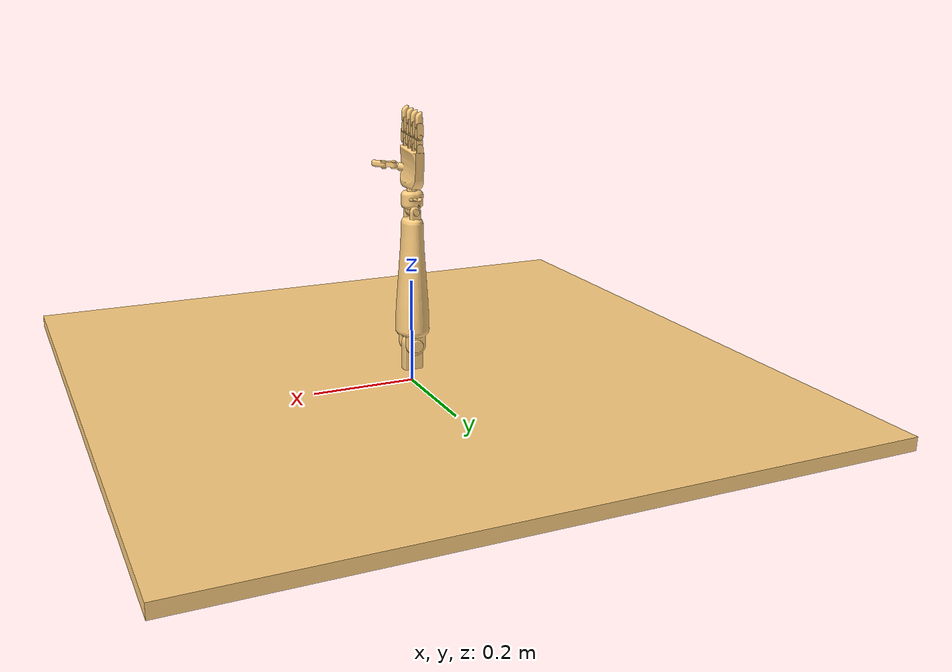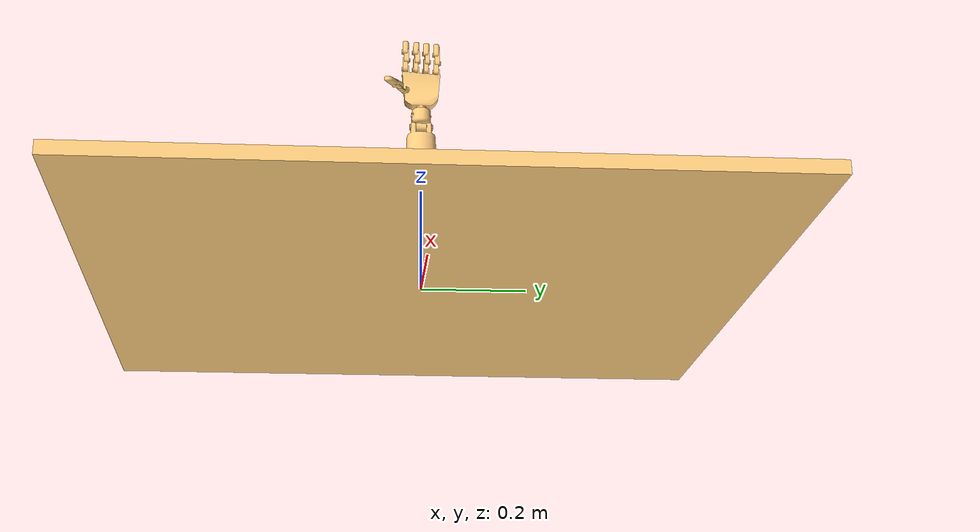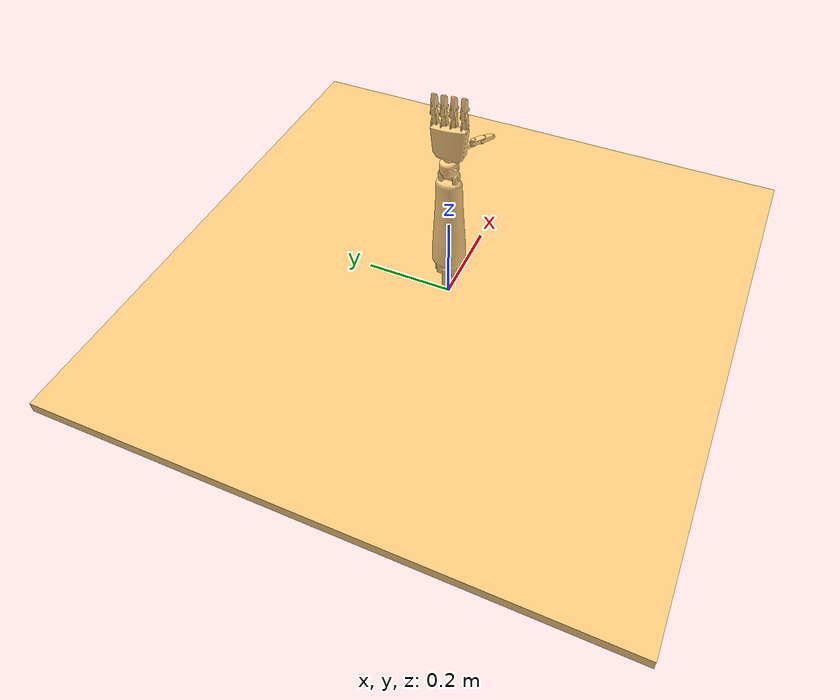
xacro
<?xml version="1.0"?>
<robot
  name="human_gripper" xmlns:xacro="http://ros.org/wiki/xacro">

  <link name="dummy_link"></link>

  <link
    name="base_link">
    <inertial>
      <origin
        xyz="-0.00634030455138496 0.0127750182488855 -0.00253612182055409"
        rpy="0 0 0" />
      <mass
        value="779.575829353543" />
      <inertia
        ixx="104.663902606885"
        ixy="2.15382035157885E-19"
        ixz="-3.1701589064862E-20"
        iyy="209.243253187742"
        iyz="4.02390555833248E-21"
        izz="104.663885218665" />
    </inertial>
    <visual>
      <origin
        xyz="0 0 0"
        rpy="0 0 0" />
      <geometry>
        <mesh
          filename="package://human_gripper/meshes/base_link.STL" />
      </geometry>
      <material
        name="">
        <color
          rgba="1 0.807843137254902 0.498039215686275 1" />
      </material>
    </visual>
    <collision>
      <origin
        xyz="0 0 0"
        rpy="0 0 0" />
      <geometry>
        <mesh
          filename="package://human_gripper/meshes/base_link.STL" />
      </geometry>
    </collision>
  </link>

  <joint name="dummy_joint" type="fixed">
    <origin rpy="0 0 0" xyz="0 0 0" />
    <parent link="dummy_link"/>
    <child link="base_link"/>
  </joint>

  <link
    name="forearm_link">
    <inertial>
      <origin
        xyz="-4.77540505455796E-07 -0.113350147515814 1.68465653167629E-07"
        rpy="0 0 0" />
      <mass
        value="12.0783072555266" />
      <inertia
        ixx="0.0563231524384721"
        ixy="9.60478297477321E-08"
        ixz="-1.35452302599274E-05"
        iyy="0.00565540642784919"
        iyz="-2.22869048134897E-08"
        izz="0.0577408713954579" />
    </inertial>
    <visual>
      <origin
        xyz="0 0 0"
        rpy="0 0 0" />
      <geometry>
        <mesh
          filename="package://human_gripper/meshes/forearm_link.STL" />
      </geometry>
      <material
        name="">
        <color
          rgba="1 0.807843137254902 0.498039215686275 1" />
      </material>
    </visual>
    <collision>
      <origin
        xyz="0 0 0"
        rpy="0 0 0" />
      <geometry>
        <mesh
          filename="package://human_gripper/meshes/forearm_link.STL" />
      </geometry>
    </collision>
  </link>
  <joint
    name="forearm_joint"
    type="revolute">
    <origin
      xyz="0 0 0.0762"
      rpy="-1.5708 0 -1.5708" />
    <parent
      link="base_link" />
    <child
      link="forearm_link" />
    <axis
      xyz="1 0 0" />
    <limit
      lower="-1.5708"
      upper="1.5708"
      effort="0"
      velocity="0" />
  </joint>
  <link
    name="wrist_link">
    <inertial>
      <origin
        xyz="-3.54827341787243E-09 0.015834457280835 9.20907958153161E-09"
        rpy="0 0 0" />
      <mass
        value="0.655755126741823" />
      <inertia
        ixx="0.000171746019698482"
        ixy="4.60377062089149E-12"
        ixz="9.03072156882194E-11"
        iyy="0.000132861214111197"
        iyz="-7.82107207987216E-11"
        izz="0.000161699361151699" />
    </inertial>
    <visual>
      <origin
        xyz="0 0 0"
        rpy="0 0 0" />
      <geometry>
        <mesh
          filename="package://human_gripper/meshes/wrist_link.STL" />
      </geometry>
      <material
        name="">
        <color
          rgba="1 0.807843137254902 0.498039215686275 1" />
      </material>
    </visual>
    <collision>
      <origin
        xyz="0 0 0"
        rpy="0 0 0" />
      <geometry>
        <mesh
          filename="package://human_gripper/meshes/wrist_link.STL" />
      </geometry>
    </collision>
  </link>
  <joint
    name="wrist_joint"
    type="revolute">
    <origin
      xyz="0 -0.26035 0"
      rpy="3.1416 0 0" />
    <parent
      link="forearm_link" />
    <child
      link="wrist_link" />
    <axis
      xyz="1 0 0" />
    <limit
      lower="-1.5708"
      upper="1.5708"
      effort="0"
      velocity="0" />
  </joint>
  <link
    name="palm_link">
    <inertial>
      <origin
        xyz="-0.00133454641740369 0.0604857930043962 -0.000847620366275223"
        rpy="0 0 0" />
      <mass
        value="2.21181125890624" />
      <inertia
        ixx="0.00149018247410878"
        ixy="1.91127863922923E-05"
        ixz="1.41042568019278E-05"
        iyy="0.000910318631613756"
        iyz="1.85684897250999E-05"
        izz="0.0022313457033219" />
    </inertial>
    <visual>
      <origin
        xyz="0 0 0"
        rpy="0 0 0" />
      <geometry>
        <mesh
          filename="package://human_gripper/meshes/palm_link.STL" />
      </geometry>
      <material
        name="">
        <color
          rgba="1 0.807843137254902 0.498039215686275 1" />
      </material>
    </visual>
    <collision>
      <origin
        xyz="0 0 0"
        rpy="0 0 0" />
      <geometry>
        <mesh
          filename="package://human_gripper/meshes/palm_link.STL" />
      </geometry>
    </collision>
  </link>
  <joint
    name="palm_joint"
    type="revolute">
    <origin
      xyz="0 0.01778 0"
      rpy="3.1416 0 3.1416" />
    <parent
      link="wrist_link" />
    <child
      link="palm_link" />
    <axis
      xyz="0 1 0" />
    <limit
      lower="0"
      upper="1.5708"
      effort="0"
      velocity="0" />
  </joint>
  <link
    name="thumb_link1">
    <inertial>
      <origin
        xyz="0.00901683401057651 0.00903716742958728 6.93889390390723E-18"
        rpy="0 0 0" />
      <mass
        value="0.0492845244427773" />
      <inertia
        ixx="3.81144161579786E-06"
        ixy="1.63250192709397E-07"
        ixz="-2.50222135297291E-23"
        iyy="1.1797655035283E-06"
        iyz="-1.27054942088145E-21"
        izz="3.7872566212501E-06" />
    </inertial>
    <visual>
      <origin
        xyz="0 0 0"
        rpy="0 0 0" />
      <geometry>
        <mesh
          filename="package://human_gripper/meshes/thumb_link1.STL" />
      </geometry>
      <material
        name="">
        <color
          rgba="1 0.807843137254902 0.498039215686275 1" />
      </material>
    </visual>
    <collision>
      <origin
        xyz="0 0 0"
        rpy="0 0 0" />
      <geometry>
        <mesh
          filename="package://human_gripper/meshes/thumb_link1.STL" />
      </geometry>
    </collision>
  </link>
  <joint
    name="thumb_joint1"
    type="revolute">
    <origin
      xyz="-0.043397 0.054047 0.01932"
      rpy="0.87388 0.045212 1.5421" />
    <parent
      link="palm_link" />
    <child
      link="thumb_link1" />
    <axis
      xyz="1 0 0" />
    <limit
      lower="0"
      upper="1.5708"
      effort="0"
      velocity="0" />
  </joint>
  <link
    name="thumb_link2">
    <inertial>
      <origin
        xyz="0.00776491096542914 0.0196806505323827 -0.000219933657724693"
        rpy="0 0 0" />
      <mass
        value="0.0584744149508582" />
      <inertia
        ixx="4.13565778419691E-06"
        ixy="-1.47109498906188E-07"
        ixz="3.97502678654692E-09"
        iyy="1.20799914295799E-06"
        iyz="1.66062681779658E-07"
        izz="3.95233199235737E-06" />
    </inertial>
    <visual>
      <origin
        xyz="0 0 0"
        rpy="0 0 0" />
      <geometry>
        <mesh
          filename="package://human_gripper/meshes/thumb_link2.STL" />
      </geometry>
      <material
        name="">
        <color
          rgba="1 0.807843137254902 0.498039215686275 1" />
      </material>
    </visual>
    <collision>
      <origin
        xyz="0 0 0"
        rpy="0 0 0" />
      <geometry>
        <mesh
          filename="package://human_gripper/meshes/thumb_link2.STL" />
      </geometry>
    </collision>
  </link>
  <joint
    name="thumb_joint2"
    type="revolute">
    <origin
      xyz="0 0.01 0"
      rpy="0 0 0" />
    <parent
      link="thumb_link1" />
    <child
      link="thumb_link2" />
    <axis
      xyz="1 0 0" />
    <limit
      lower="0"
      upper="1.5708"
      effort="0"
      velocity="0" />
  </joint>
  <link
    name="index_link1">
    <inertial>
      <origin
        xyz="0.00933728052580867 -0.00903716742958732 -2.96028299798E-18"
        rpy="0 0 0" />
      <mass
        value="0.0492845244427773" />
      <inertia
        ixx="3.81144161579786E-06"
        ixy="-1.63250192709408E-07"
        ixz="1.11280468297742E-22"
        iyy="1.1797655035283E-06"
        iyz="7.91973255189714E-22"
        izz="3.78725662125011E-06" />
    </inertial>
    <visual>
      <origin
        xyz="0 0 0"
        rpy="0 0 0" />
      <geometry>
        <mesh
          filename="package://human_gripper/meshes/index_link1.STL" />
      </geometry>
      <material
        name="">
        <color
          rgba="1 0.807843137254902 0.498039215686275 1" />
      </material>
    </visual>
    <collision>
      <origin
        xyz="0 0 0"
        rpy="0 0 0" />
      <geometry>
        <mesh
          filename="package://human_gripper/meshes/index_link1.STL" />
      </geometry>
    </collision>
  </link>
  <joint
    name="index_joint1"
    type="revolute">
    <origin
      xyz="-0.022786 0.10973 0"
      rpy="0 0 -3.1416" />
    <parent
      link="palm_link" />
    <child
      link="index_link1" />
    <axis
      xyz="1 0 0" />
    <limit
      lower="-1.5708"
      upper="0"
      effort="0"
      velocity="0" />
  </joint>
  <link
    name="index_link2">
    <inertial>
      <origin
        xyz="-0.00488671947419137 0.00903716742958732 6.95315974962666E-18"
        rpy="0 0 0" />
      <mass
        value="0.0492845244427774" />
      <inertia
        ixx="3.81144161579786E-06"
        ixy="1.63250192709402E-07"
        ixz="7.50127380606275E-23"
        iyy="1.1797655035283E-06"
        iyz="-1.26694764744726E-21"
        izz="3.7872566212501E-06" />
    </inertial>
    <visual>
      <origin
        xyz="0 0 0"
        rpy="0 0 0" />
      <geometry>
        <mesh
          filename="package://human_gripper/meshes/index_link2.STL" />
      </geometry>
      <material
        name="">
        <color
          rgba="1 0.807843137254902 0.498039215686275 1" />
      </material>
    </visual>
    <collision>
      <origin
        xyz="0 0 0"
        rpy="0 0 0" />
      <geometry>
        <mesh
          filename="package://human_gripper/meshes/index_link2.STL" />
      </geometry>
    </collision>
  </link>
  <joint
    name="index_joint2"
    type="revolute">
    <origin
      xyz="0.00254 -0.01905 0"
      rpy="0 0 -3.1416" />
    <parent
      link="index_link1" />
    <child
      link="index_link2" />
    <axis
      xyz="1 0 0" />
    <limit
      lower="0"
      upper="1.5708"
      effort="0"
      velocity="0" />
  </joint>
  <link
    name="index_link3">
    <inertial>
      <origin
        xyz="-0.00613864169175579 0.0106306443706335 -0.000219930065790364"
        rpy="0 0 0" />
      <mass
        value="0.0584743357750474" />
      <inertia
        ixx="4.13565127579707E-06"
        ixy="-1.471099722789E-07"
        ixz="3.97564171396168E-09"
        iyy="1.20799696989037E-06"
        iyz="1.66066676079325E-07"
        izz="3.95232466111938E-06" />
    </inertial>
    <visual>
      <origin
        xyz="0 0 0"
        rpy="0 0 0" />
      <geometry>
        <mesh
          filename="package://human_gripper/meshes/index_link3.STL" />
      </geometry>
      <material
        name="">
        <color
          rgba="1 0.807843137254902 0.498039215686275 1" />
      </material>
    </visual>
    <collision>
      <origin
        xyz="0 0 0"
        rpy="0 0 0" />
      <geometry>
        <mesh
          filename="package://human_gripper/meshes/index_link3.STL" />
      </geometry>
    </collision>
  </link>
  <joint
    name="index_joint3"
    type="revolute">
    <origin
      xyz="0 0.01905 0"
      rpy="0 0 0" />
    <parent
      link="index_link2" />
    <child
      link="index_link3" />
    <axis
      xyz="1 0 0" />
    <limit
      lower="0"
      upper="1.5708"
      effort="0"
      velocity="0" />
  </joint>
  <link
    name="middle_link1">
    <inertial>
      <origin
        xyz="0.00933728052580868 -0.00903716742958727 -3.10176149081067E-18"
        rpy="0 0 0" />
      <mass
        value="0.0492845244427773" />
      <inertia
        ixx="3.81144161579786E-06"
        ixy="-1.63250192709408E-07"
        ixz="-1.42546473729865E-23"
        iyy="1.1797655035283E-06"
        iyz="1.13217574228451E-21"
        izz="3.78725662125011E-06" />
    </inertial>
    <visual>
      <origin
        xyz="0 0 0"
        rpy="0 0 0" />
      <geometry>
        <mesh
          filename="package://human_gripper/meshes/middle_link1.STL" />
      </geometry>
      <material
        name="">
        <color
          rgba="1 0.807843137254902 0.498039215686275 1" />
      </material>
    </visual>
    <collision>
      <origin
        xyz="0 0 0"
        rpy="0 0 0" />
      <geometry>
        <mesh
          filename="package://human_gripper/meshes/middle_link1.STL" />
      </geometry>
    </collision>
  </link>
  <joint
    name="middle_joint1"
    type="revolute">
    <origin
      xyz="-0.00127 0.10795 0"
      rpy="0 0 -3.1416" />
    <parent
      link="palm_link" />
    <child
      link="middle_link1" />
    <axis
      xyz="1 0 0" />
    <limit
      lower="-1.5708"
      upper="0"
      effort="0"
      velocity="0" />
  </joint>
  <link
    name="middle_link2">
    <inertial>
      <origin
        xyz="-0.00488671947419138 0.00903716742958727 6.94798976215197E-18"
        rpy="0 0 0" />
      <mass
        value="0.0492845244427774" />
      <inertia
        ixx="3.81144161579786E-06"
        ixy="1.63250192709402E-07"
        ixz="1.6104209442282E-22"
        iyy="1.1797655035283E-06"
        iyz="-1.26257794471827E-21"
        izz="3.7872566212501E-06" />
    </inertial>
    <visual>
      <origin
        xyz="0 0 0"
        rpy="0 0 0" />
      <geometry>
        <mesh
          filename="package://human_gripper/meshes/middle_link2.STL" />
      </geometry>
      <material
        name="">
        <color
          rgba="1 0.807843137254902 0.498039215686275 1" />
      </material>
    </visual>
    <collision>
      <origin
        xyz="0 0 0"
        rpy="0 0 0" />
      <geometry>
        <mesh
          filename="package://human_gripper/meshes/middle_link2.STL" />
      </geometry>
    </collision>
  </link>
  <joint
    name="middle_joint2"
    type="revolute">
    <origin
      xyz="0.00254 -0.01905 0"
      rpy="0 0 -3.1416" />
    <parent
      link="middle_link1" />
    <child
      link="middle_link2" />
    <axis
      xyz="1 0 0" />
    <limit
      lower="0"
      upper="1.5708"
      effort="0"
      velocity="0" />
  </joint>
  <link
    name="middle_link3">
    <inertial>
      <origin
        xyz="-0.00613864169175581 0.0106306443706333 -0.000219930065790222"
        rpy="0 0 0" />
      <mass
        value="0.0584743357750467" />
      <inertia
        ixx="4.13565127579687E-06"
        ixy="-1.47109972278937E-07"
        ixz="3.97564171397066E-09"
        iyy="1.20799696989012E-06"
        iyz="1.66066676083118E-07"
        izz="3.95232466111941E-06" />
    </inertial>
    <visual>
      <origin
        xyz="0 0 0"
        rpy="0 0 0" />
      <geometry>
        <mesh
          filename="package://human_gripper/meshes/middle_link3.STL" />
      </geometry>
      <material
        name="">
        <color
          rgba="1 0.807843137254902 0.498039215686275 1" />
      </material>
    </visual>
    <collision>
      <origin
        xyz="0 0 0"
        rpy="0 0 0" />
      <geometry>
        <mesh
          filename="package://human_gripper/meshes/middle_link3.STL" />
      </geometry>
    </collision>
  </link>
  <joint
    name="middle_joint3"
    type="revolute">
    <origin
      xyz="0 0.01905 0"
      rpy="0 0 0" />
    <parent
      link="middle_link2" />
    <child
      link="middle_link3" />
    <axis
      xyz="1 0 0" />
    <limit
      lower="0"
      upper="1.5708"
      effort="0"
      velocity="0" />
  </joint>
  <link
    name="ring_link1">
    <inertial>
      <origin
        xyz="-0.0109133113109169 -0.00735909405147117 -1.0894773136718E-16"
        rpy="0 0 0" />
      <mass
        value="0.0492845244427773" />
      <inertia
        ixx="3.81144161579786E-06"
        ixy="-1.63250192709407E-07"
        ixz="1.29893062032991E-22"
        iyy="1.1797655035283E-06"
        iyz="6.73655444667634E-22"
        izz="3.78725662125011E-06" />
    </inertial>
    <visual>
      <origin
        xyz="0 0 0"
        rpy="0 0 0" />
      <geometry>
        <mesh
          filename="package://human_gripper/meshes/ring_link1.STL" />
      </geometry>
      <material
        name="">
        <color
          rgba="1 0.807843137254902 0.498039215686275 1" />
      </material>
    </visual>
    <collision>
      <origin
        xyz="0 0 0"
        rpy="0 0 0" />
      <geometry>
        <mesh
          filename="package://human_gripper/meshes/ring_link1.STL" />
      </geometry>
    </collision>
  </link>
  <joint
    name="ring_joint1"
    type="revolute">
    <origin
      xyz="-0.00127 0.10795 0"
      rpy="0 0 -3.1416" />
    <parent
      link="palm_link" />
    <child
      link="ring_link1" />
    <axis
      xyz="1 0 0" />
    <limit
      lower="-1.5708"
      upper="1.5708"
      effort="0"
      velocity="0" />
  </joint>
  <link
    name="ring_link2">
    <inertial>
      <origin
        xyz="0.00536387236253422 0.00735909405147117 -3.88212001395077E-17"
        rpy="0 0 0" />
      <mass
        value="0.0492845244427774" />
      <inertia
        ixx="3.81144161579786E-06"
        ixy="1.63250192709404E-07"
        ixz="3.03238510971491E-23"
        iyy="1.1797655035283E-06"
        iyz="-1.77283144365726E-21"
        izz="3.78725662125011E-06" />
    </inertial>
    <visual>
      <origin
        xyz="0 0 0"
        rpy="0 0 0" />
      <geometry>
        <mesh
          filename="package://human_gripper/meshes/ring_link2.STL" />
      </geometry>
      <material
        name="">
        <color
          rgba="1 0.807843137254902 0.498039215686275 1" />
      </material>
      </visual>
      <collision>
      <origin
        xyz="0 0 0"
        rpy="0 0 0" />
      <geometry>
        <mesh
          filename="package://human_gripper/meshes/ring_link2.STL" />
      </geometry>
    </collision>
  </link>
  <joint
    name="ring_joint2"
    type="revolute">
    <origin
      xyz="-0.00746 -0.01905 0"
      rpy="0 0 -3.1416" />
    <parent
      link="ring_link1" />
    <child
      link="ring_link2" />
    <axis
      xyz="1 0 0" />
    <limit
      lower="0"
      upper="1.5708"
      effort="0"
      velocity="0" />
  </joint>
  <link
    name="ring_link3">
    <inertial>
      <origin
        xyz="0.00411195014497646 0.00895257099241997 -0.000219930065885925"
        rpy="0 0 0" />
      <mass
        value="0.058474335773948" />
      <inertia
        ixx="4.13565127591682E-06"
        ixy="-1.47109972293844E-07"
        ixz="3.97564171175199E-09"
        iyy="1.20799696985661E-06"
        iyz="1.66066676109149E-07"
        izz="3.95232466127434E-06" />
    </inertial>
    <visual>
      <origin
        xyz="0 0 0"
        rpy="0 0 0" />
      <geometry>
        <mesh
          filename="package://human_gripper/meshes/ring_link3.STL" />
      </geometry>
      <material
        name="">
        <color
          rgba="1 0.807843137254902 0.498039215686275 1" />
      </material>
    </visual>
    <collision>
      <origin
        xyz="0 0 0"
        rpy="0 0 0" />
      <geometry>
        <mesh
          filename="package://human_gripper/meshes/ring_link3.STL" />
      </geometry>
    </collision>
  </link>
  <joint
    name="ring_joint3"
    type="revolute">
    <origin
      xyz="0 0.01905 0"
      rpy="0 0 0" />
    <parent
      link="ring_link2" />
    <child
      link="ring_link3" />
    <axis
      xyz="1 0 0" />
    <limit
      lower="0"
      upper="1.5708"
      effort="0"
      velocity="0" />
  </joint>
  <link
    name="pinky_link1">
    <inertial>
      <origin
        xyz="-0.00268015697416352 -0.00389806770910683 -4.5800575080755E-17"
        rpy="0 0 0" />
      <mass
        value="0.0492845244427773" />
      <inertia
        ixx="3.81144161579786E-06"
        ixy="-1.63250192709408E-07"
        ixz="1.79503288915012E-22"
        iyy="1.1797655035283E-06"
        iyz="8.27535895267898E-22"
        izz="3.78725662125011E-06" />
    </inertial>
    <visual>
      <origin
        xyz="0 0 0"
        rpy="0 0 0" />
      <geometry>
        <mesh
          filename="package://human_gripper/meshes/pinky_link1.STL" />
      </geometry>
      <material
        name="">
        <color
          rgba="1 0.807843137254902 0.498039215686275 1" />
      </material>
    </visual>
    <collision>
      <origin
        xyz="0 0 0"
        rpy="0 0 0" />
      <geometry>
        <mesh
          filename="package://human_gripper/meshes/pinky_link1.STL" />
      </geometry>
    </collision>
  </link>
  <joint
    name="pinky_joint1"
    type="revolute">
    <origin
      xyz="0.027214 0.10973 0"
      rpy="0 0 -3.1416" />
    <parent
      link="palm_link" />
    <child
      link="pinky_link1" />
    <axis
      xyz="1 0 0" />
    <limit
      lower="-1.5708"
      upper="1.5708"
      effort="0"
      velocity="0" />
  </joint>
  <link
    name="pinky_link2">
    <inertial>
      <origin
        xyz="0.00713071802578081 0.00389806770910683 -4.10671786118873E-17"
        rpy="0 0 0" />
      <mass
        value="0.0492845244427774" />
      <inertia
        ixx="3.81144161579786E-06"
        ixy="1.63250192709402E-07"
        ixz="1.14038430187053E-22"
        iyy="1.1797655035283E-06"
        iyz="-1.03849848918976E-21"
        izz="3.78725662125011E-06" />
    </inertial>
    <visual>
      <origin
        xyz="0 0 0"
        rpy="0 0 0" />
      <geometry>
        <mesh
          filename="package://human_gripper/meshes/pinky_link2.STL" />
      </geometry>
      <material
        name="">
        <color
          rgba="1 0.807843137254902 0.498039215686275 1" />
      </material>
    </visual>
    <collision>
      <origin
        xyz="0 0 0"
        rpy="0 0 0" />
      <geometry>
        <mesh
          filename="package://human_gripper/meshes/pinky_link2.STL" />
      </geometry>
    </collision>
  </link>
  <joint
    name="pinky_joint2"
    type="revolute">
    <origin
      xyz="0.00254 -0.01905 0"
      rpy="0 0 -3.1416" />
    <parent
      link="pinky_link1" />
    <child
      link="pinky_link2" />
    <axis
      xyz="1 0 0" />
    <limit
      lower="0"
      upper="1.5708"
      effort="0"
      velocity="0" />
  </joint>
  <link
    name="pinky_link3">
    <inertial>
      <origin
        xyz="0.00587879580821641 0.00549154465015289 -0.000219930065790405"
        rpy="0 0 0" />
      <mass
        value="0.0584743357750467" />
      <inertia
        ixx="4.13565127579631E-06"
        ixy="-1.47109972278925E-07"
        ixz="3.97564171396666E-09"
        iyy="1.20799696988968E-06"
        iyz="1.66066676083012E-07"
        izz="3.95232466111929E-06" />
    </inertial>
    <visual>
      <origin
        xyz="0 0 0"
        rpy="0 0 0" />
      <geometry>
        <mesh
          filename="package://human_gripper/meshes/pinky_link3.STL" />
      </geometry>
      <material
        name="">
        <color
          rgba="1 0.807843137254902 0.498039215686275 1" />
      </material>
    </visual>
    <collision>
      <origin
        xyz="0 0 0"
        rpy="0 0 0" />
      <geometry>
        <mesh
          filename="package://human_gripper/meshes/pinky_link3.STL" />
      </geometry>
    </collision>
  </link>
  <joint
    name="pinky_joint3"
    type="revolute">
    <origin
      xyz="0 0.01905 0"
      rpy="0 0 0" />
    <parent
      link="pinky_link2" />
    <child
      link="pinky_link3" />
    <axis
      xyz="1 0 0" />
    <limit
      lower="0"
      upper="1.5708"
      effort="0"
      velocity="0" />
  </joint>

  <xacro:macro name="main_color">
    <visual>
    <material>
        <ambient>0.7383 0.5898 0.4687 1</ambient>
        <diffuse>0.7383 0.5898 0.4687 1</diffuse>
        <specular>0.1 0.1 0.1 1</specular>
        <emissive>0 0 0 0</emissive>
    </material>
    </visual>
  </xacro:macro>

  <xacro:macro name="contrast_color">
    <visual>
    <material>
        <ambient>1 0.1 0.1 1</ambient>
        <diffuse>1 0.1 0.1 1</diffuse>
        <specular>0.1 0.1 0.1 1</specular>
        <emissive>0 0 0 0</emissive>
    </material>
    </visual>
  </xacro:macro>

  <gazebo reference="base_link">
    <xacro:main_color />
  </gazebo>
  <gazebo reference="forearm_link">
    <xacro:main_color />
  </gazebo>
  <gazebo reference="wrist_link">
    <xacro:contrast_color />
  </gazebo>
  <gazebo reference="palm_link">
    <xacro:main_color />
  </gazebo>
  <gazebo reference="thumb_link1">
    <xacro:main_color />
  </gazebo>
  <gazebo reference="thumb_link2">
    <xacro:contrast_color />
  </gazebo>
  <gazebo reference="index_link1">
    <xacro:contrast_color />
  </gazebo>
  <gazebo reference="index_link2">
    <xacro:main_color />
  </gazebo>
  <gazebo reference="index_link3">
    <xacro:contrast_color />
  </gazebo>
  <gazebo reference="middle_link1">
    <xacro:contrast_color />
  </gazebo>
  <gazebo reference="middle_link2">
    <xacro:main_color />
  </gazebo>
  <gazebo reference="middle_link3">
    <xacro:contrast_color />
  </gazebo>
  <gazebo reference="ring_link1">
    <xacro:contrast_color />
  </gazebo>
  <gazebo reference="ring_link2">
    <xacro:main_color />
  </gazebo>
  <gazebo reference="ring_link3">
    <xacro:contrast_color />
  </gazebo>
  <gazebo reference="pinky_link1">
    <xacro:contrast_color />
  </gazebo>
  <gazebo reference="pinky_link2">
    <xacro:main_color />
  </gazebo>
  <gazebo reference="pinky_link3">
    <xacro:contrast_color />
  </gazebo>

  <gazebo>
    <plugin filename="libgazebo_ros2_control.so" name="gazebo_ros2_control">
        <parameters>$(find human_gripper)/config/control.yaml</parameters>
    </plugin>
  </gazebo>

  <ros2_control name="GazeboSystem" type="system">
    <hardware>
        <plugin>gazebo_ros2_control/GazeboSystem</plugin>
    </hardware>

    # Velocity Controllers
    <joint name="forearm_joint">
        <command_interface name="velocity">
            <param name="min">-1000</param>
            <param name="max">1000</param>
        </command_interface>
        <state_interface name="position"/>
        <state_interface name="velocity"/>
    </joint>
    <joint name="wrist_joint">
        <command_interface name="velocity">
            <param name="min">-1000</param>
            <param name="max">1000</param>
        </command_interface>
        <state_interface name="position"/>
        <state_interface name="velocity"/>
    </joint>
    <joint name="palm_joint">
        <command_interface name="velocity">
            <param name="min">-1000</param>
            <param name="max">1000</param>
        </command_interface>
        <state_interface name="position"/>
        <state_interface name="velocity"/>
    </joint>

    <joint name="thumb_joint1">
        <command_interface name="velocity">
            <param name="min">-1000</param>
            <param name="max">1000</param>
        </command_interface>
        <state_interface name="position"/>
        <state_interface name="velocity"/>
    </joint>
    <joint name="thumb_joint2">
        <command_interface name="velocity">
            <param name="min">-1000</param>
            <param name="max">1000</param>
        </command_interface>
        <state_interface name="position"/>
        <state_interface name="velocity"/>
    </joint>

    <joint name="index_joint1">
        <command_interface name="velocity">
            <param name="min">-1000</param>
            <param name="max">1000</param>
        </command_interface>
        <state_interface name="position"/>
        <state_interface name="velocity"/>
    </joint>
    <joint name="index_joint2">
        <command_interface name="velocity">
            <param name="min">-1000</param>
            <param name="max">1000</param>
        </command_interface>
        <state_interface name="position"/>
        <state_interface name="velocity"/>
    </joint>
    <joint name="index_joint3">
        <command_interface name="velocity">
            <param name="min">-1000</param>
            <param name="max">1000</param>
        </command_interface>
        <state_interface name="position"/>
        <state_interface name="velocity"/>
    </joint>

    <joint name="middle_joint1">
        <command_interface name="velocity">
            <param name="min">-1000</param>
            <param name="max">1000</param>
        </command_interface>
        <state_interface name="position"/>
        <state_interface name="velocity"/>
    </joint>
    <joint name="middle_joint2">
        <command_interface name="velocity">
            <param name="min">-1000</param>
            <param name="max">1000</param>
        </command_interface>
        <state_interface name="position"/>
        <state_interface name="velocity"/>
    </joint>
    <joint name="middle_joint3">
        <command_interface name="velocity">
            <param name="min">-1000</param>
            <param name="max">1000</param>
        </command_interface>
        <state_interface name="position"/>
        <state_interface name="velocity"/>
    </joint>

    <joint name="ring_joint1">
        <command_interface name="velocity">
            <param name="min">-1000</param>
            <param name="max">1000</param>
        </command_interface>
        <state_interface name="position"/>
        <state_interface name="velocity"/>
    </joint>
    <joint name="ring_joint2">
        <command_interface name="velocity">
            <param name="min">-1000</param>
            <param name="max">1000</param>
        </command_interface>
        <state_interface name="position"/>
        <state_interface name="velocity"/>
    </joint>
    <joint name="ring_joint3">
        <command_interface name="velocity">
            <param name="min">-1000</param>
            <param name="max">1000</param>
        </command_interface>
        <state_interface name="position"/>
        <state_interface name="velocity"/>
    </joint>

    <joint name="pinky_joint1">
        <command_interface name="velocity">
            <param name="min">-1000</param>
            <param name="max">1000</param>
        </command_interface>
        <state_interface name="position"/>
        <state_interface name="velocity"/>
    </joint>
    <joint name="pinky_joint2">
        <command_interface name="velocity">
            <param name="min">-1000</param>
            <param name="max">1000</param>
        </command_interface>
        <state_interface name="position"/>
        <state_interface name="velocity"/>
    </joint>
    <joint name="pinky_joint3">
        <command_interface name="velocity">
            <param name="min">-1000</param>
            <param name="max">1000</param>
        </command_interface>
        <state_interface name="position"/>
        <state_interface name="velocity"/>
    </joint>

    # PositionControllers
    <joint name="forearm_joint"> <!-- Joint 1, aka the elbow -->
        <command_interface name="position">
            <param name="min">0</param>
            <param name="max">1.5708</param>
        </command_interface>
        <state_interface name="position"/>
        <state_interface name="velocity"/>1.1618
    </joint>
    <joint name="wrist_joint"> <!-- Joint 2, aka the wrist "side-to-side" -->
        <command_interface name="position">
            <param name="min">0</param>
            <param name="max">1.5708</param>
        </command_interface>
        <state_interface name="position"/>
        <state_interface name="velocity"/>
    </joint>
    <joint name="palm_joint">  <!-- Joint 3, aka the wrist revolute joint, the "up and down" is skipped -->
        <command_interface name="position">
            <param name="min">0</param>
            <param name="max">1.5708</param>
        </command_interface>
        <state_interface name="position"/>
        <state_interface name="velocity"/>
    </joint>

    <joint name="index_joint1"> <!-- Joint 4, index finger start, the "up and down" is skipped -->
        <command_interface name="position">
            <param name="min">-1.5708</param>
            <param name="max">0</param>
        </command_interface>
        <state_interface name="position"/>
        <state_interface name="velocity"/>
    </joint>
    <joint name="index_joint2"> <!-- Joint 5, index finger middle -->
        <command_interface name="position">
            <param name="min">0</param>
            <param name="max">1.5708</param>
        </command_interface>
        <state_interface name="position"/>
        <state_interface name="velocity"/>
    </joint>
    <joint name="index_joint3"> <!-- Joint 6, index finger tip -->
        <command_interface name="position">
            <param name="min">0</param>
            <param name="max">1.5708</param>
        </command_interface>
        <state_interface name="position"/>
        <state_interface name="velocity"/>
    </joint>

    <joint name="thumb_joint1"> <!-- Joint 7, thumb base -->
        <command_interface name="position">
            <param name="min">-1.5708</param>
            <param name="max">0</param>
        </command_interface>
        <state_interface name="position"/>
        <state_interface name="velocity"/>
    </joint>
    <joint name="thumb_joint2"> <!-- Joint 8, thumb tip -->
        <command_interface name="position">
            <param name="min">0</param>
            <param name="max">1.5708</param>
        </command_interface>
        <state_interface name="position"/>
        <state_interface name="velocity"/>
    </joint>

    <joint name="middle_joint1"> <!-- Joint 9, or 4 -->
        <command_interface name="position">
            <param name="min">0</param>
            <param name="max">1.5708</param>
        </command_interface>
        <state_interface name="position"/>
        <state_interface name="velocity"/>
    </joint>
    <joint name="middle_joint2"> <!-- Joint 10, or 5 -->
        <command_interface name="position">
            <param name="min">0</param>
            <param name="max">1.5708</param>
        </command_interface>
        <state_interface name="position"/>
        <state_interface name="velocity"/>
    </joint>
    <joint name="middle_joint3"> <!-- Joint 11 -->
        <command_interface name="position">
            <param name="min">0</param>
            <param name="max">1.5708</param>
        </command_interface>
        <state_interface name="position"/>
        <state_interface name="velocity"/>
    </joint>

    <joint name="ring_joint1"> <!-- Joint 12, or 4 -->
        <command_interface name="position">
            <param name="min">0</param>
            <param name="max">1.5708</param>
        </command_interface>
        <state_interface name="position"/>
        <state_interface name="velocity"/>
    </joint>
    <joint name="ring_joint2"> <!-- Joint 13, or 5 -->
        <command_interface name="position">
            <param name="min">0</param>
            <param name="max">1.5708</param>
        </command_interface>
        <state_interface name="position"/>
        <state_interface name="velocity"/>
    </joint>
    <joint name="ring_joint3"> <!-- Joint 14 -->
        <command_interface name="position">
            <param name="min">0</param>
            <param name="max">1.5708</param>
        </command_interface>
        <state_interface name="position"/>
        <state_interface name="velocity"/>
    </joint>

    <joint name="pinky_joint1"> <!-- Joint 15, or 4 -->
        <command_interface name="position">
            <param name="min">0</param>
            <param name="max">1.5708</param>
        </command_interface>
        <state_interface name="position"/>
        <state_interface name="velocity"/>
    </joint>
    <joint name="pinky_joint2"> <!-- Joint 16, or 5 -->
        <command_interface name="position">
            <param name="min">0</param>
            <param name="max">1.5708</param>
        </command_interface>
        <state_interface name="position"/>
        <state_interface name="velocity"/>
    </joint>
    <joint name="pinky_joint3"> <!-- Joint 17 -->
        <command_interface name="position">
            <param name="min">0</param>
            <param name="max">1.5708</param>
        </command_interface>
        <state_interface name="position"/>
        <state_interface name="velocity"/>
    </joint>

  </ros2_control>

  <gazebo>
    <plugin name='vacuum_gripper' filename='libgazebo_ros_vacuum_gripper.so'>

      <!-- This part can be commented out if not required -->
      <ros>

        <!-- Add a namespace -->
        <namespace>/demo</namespace>

        <!-- Remapping service and topic names -->
        <remapping>switch:=custom_switch</remapping>
        <remapping>grasping:=custom_grasping</remapping>
      </ros>

      <!-- Link associated with gripper -->
      <link_name>thumb_link2</link_name>

      <!-- Max distance to attract entities -->
      <max_distance>1.0</max_distance>

      <!-- List of entities to be not attracted by the gripper -->
      <fixed>ground_plane</fixed>
      <fixed>wall</fixed>
      <fixed>forearm_link</fixed>
      <fixed>palm_link</fixed>
      <fixed>wrist_link</fixed>
      <fixed>thumb_link1</fixed>

      <fixed>index_link1</fixed>
      <fixed>index_link2</fixed>
      <fixed>index_link3</fixed>
      <fixed>middle_link1</fixed>
      <fixed>middle_link2</fixed>
      <fixed>middle_link3</fixed>
      <fixed>ring_link1</fixed>
      <fixed>ring_link2</fixed>
      <fixed>ring_link3</fixed>
      <fixed>pinky_link1</fixed>
      <fixed>pinky_link2</fixed>
      <fixed>pinky_link3</fixed>
    </plugin>
  </gazebo>

</robot>
